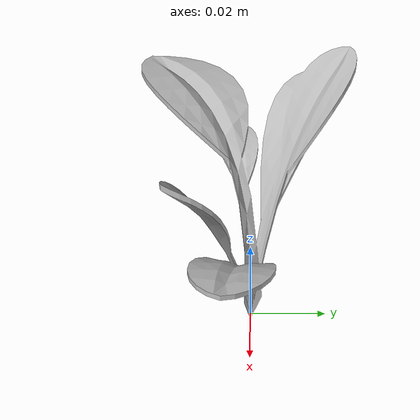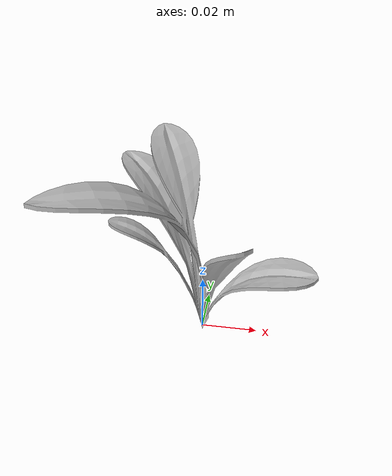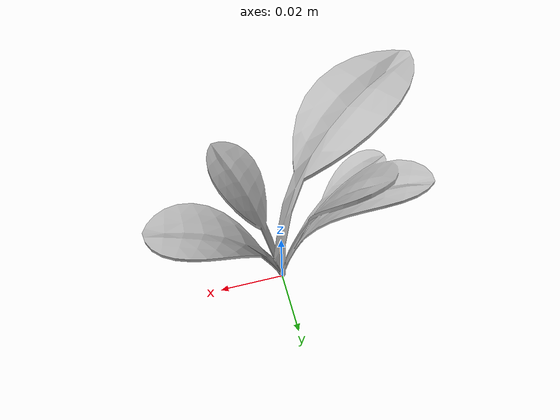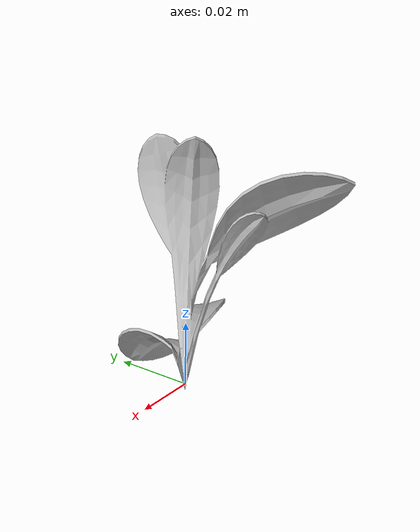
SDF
<sdf version="1.6">
  <model name="sugar_beet_16">
    <static>true</static>
    <link name="body">
      <visual name="visual">
        <geometry>
          <mesh>
            <uri>file:///sugar_beet_16/media/sugar_beet.dae</uri>
          </mesh>
        </geometry>
      </visual>
    </link>
  </model>
</sdf>
